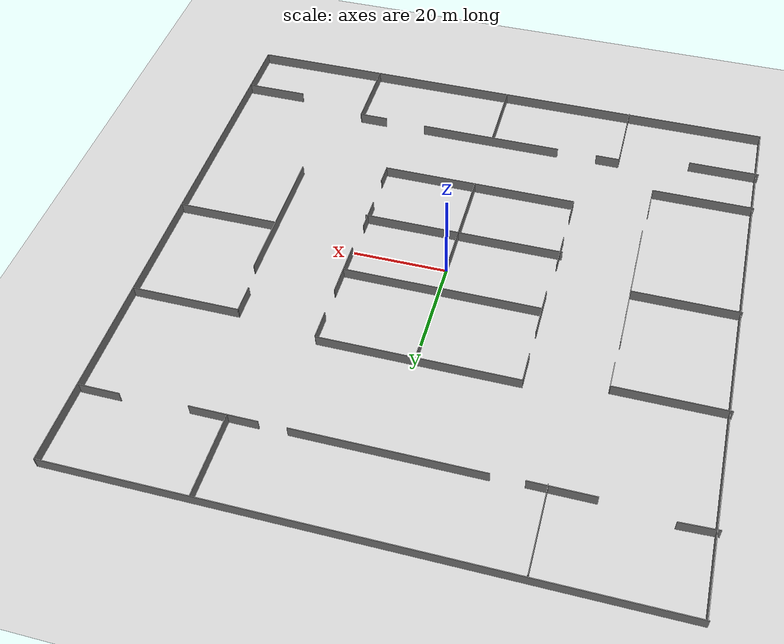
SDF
<sdf version="1.6">
 <world name="default">
  <light name="sun" type="directional">
   <pose>0 0 10 0 -0 0</pose>
   <diffuse>0.8 0.8 0.8 1</diffuse>
   <specular>0.1 0.1 0.1 1</specular>
   <attenuation>
    <range>1000</range>
    <constant>0.9</constant>
    <linear>0.01</linear>
    <quadratic>0.001</quadratic>
   </attenuation>
   <direction>-0.5 0.5 -1</direction>
  </light>
  <model name="ground_plane">
   <static>1</static>
   <link name="link">
    <collision name="collision">
     <geometry><plane><normal>0 0 1</normal><size>100 100</size></plane></geometry>
     <surface><friction><ode><mu>100</mu><mu2>50</mu2></ode></friction></surface>
    </collision>
    <visual name="visual">
     <cast_shadows>0</cast_shadows>
     <geometry><plane><normal>0 0 1</normal><size>100 100</size></plane></geometry>
     <material>
      <script><uri>file://media/materials/scripts/gazebo.material</uri><name>Gazebo/Grey</name></script>
     </material>
    </visual>
   </link>
  </model>
  <gravity>0 0 -9.8</gravity>
  <magnetic_field>6e-06 2.3e-05 -4.2e-05</magnetic_field>
  <atmosphere type="adiabatic"/>
  <physics name="default_physics" default="0" type="ode">
   <max_step_size>0.001</max_step_size>
   <real_time_factor>1</real_time_factor>
   <real_time_update_rate>1000</real_time_update_rate>
  </physics>
  <scene><ambient>0.4 0.4 0.4 1</ambient><background>0.7 0.7 0.7 1</background><shadows>1</shadows></scene>
  <spherical_coordinates>
   <surface_model>EARTH_WGS84</surface_model>
   <latitude_deg>0</latitude_deg>
   <longitude_deg>0</longitude_deg>
   <elevation>0</elevation>
   <heading_deg>0</heading_deg>
  </spherical_coordinates>
  <model name="model">
   <pose>-0.404084 3.90839 0 0 -0 0</pose>
   <link name="Wall_0">
    <collision name="Wall_0_Collision">
     <geometry><box><size>119.25 0.15 2.5</size></box></geometry>
     <pose>0 0 1.25 0 -0 0</pose>
    </collision>
    <visual name="Wall_0_Visual">
     <pose>0 0 1.25 0 -0 0</pose>
     <geometry><box><size>119.25 0.15 2.5</size></box></geometry>
     <material>
      <script><uri>file://media/materials/scripts/gazebo.material</uri><name>Gazebo/Grey</name></script>
      <ambient>1 1 1 1</ambient>
     </material>
    </visual>
    <pose>-59.3614 0.107463 0 0 0 -1.5708</pose>
   </link>
   <link name="Wall_1">
    <collision name="Wall_1_Collision">
     <geometry><box><size>119.5 0.15 2.5</size></box></geometry>
     <pose>0 0 1.25 0 -0 0</pose>
    </collision>
    <visual name="Wall_1_Visual">
     <pose>0 0 1.25 0 -0 0</pose>
     <geometry><box><size>119.5 0.15 2.5</size></box></geometry>
     <material>
      <script><uri>file://media/materials/scripts/gazebo.material</uri><name>Gazebo/Grey</name></script>
      <ambient>1 1 1 1</ambient>
     </material>
    </visual>
    <pose>0.313632 -59.4425 0 0 -0 0</pose>
   </link>
   <link name="Wall_10">
    <collision name="Wall_10_Collision">
     <geometry><box><size>4.25 0.15 2.5</size></box></geometry>
     <pose>0 0 1.25 0 -0 0</pose>
    </collision>
    <visual name="Wall_10_Visual">
     <pose>0 0 1.25 0 -0 0</pose>
     <geometry><box><size>4.25 0.15 2.5</size></box></geometry>
     <material>
      <script><uri>file://media/materials/scripts/gazebo.material</uri><name>Gazebo/Grey</name></script>
      <ambient>1 1 1 1</ambient>
     </material>
    </visual>
    <pose>20.3445 -26.0989 0 0 -0 1.5708</pose>
   </link>
   <link name="Wall_12">
    <collision name="Wall_12_Collision">
     <geometry><box><size>42.762 0.15 2.5</size></box></geometry>
     <pose>0 0 1.25 0 -0 0</pose>
    </collision>
    <visual name="Wall_12_Visual">
     <pose>0 0 1.25 0 -0 0</pose>
     <geometry><box><size>42.762 0.15 2.5</size></box></geometry>
     <material>
      <script><uri>file://media/materials/scripts/gazebo.material</uri><name>Gazebo/Grey</name></script>
      <ambient>1 1 1 1</ambient>
     </material>
    </visual>
    <pose>-0.756543 -13.0266 0 0 -0 0</pose>
   </link>
   <link name="Wall_14">
    <collision name="Wall_14_Collision">
     <geometry><box><size>7.75 0.15 2.5</size></box></geometry>
     <pose>0 0 1.25 0 -0 0</pose>
    </collision>
    <visual name="Wall_14_Visual">
     <pose>0 0 1.25 0 -0 0</pose>
     <geometry><box><size>7.75 0.15 2.5</size></box></geometry>
     <material>
      <script><uri>file://media/materials/scripts/gazebo.material</uri><name>Gazebo/Grey</name></script>
      <ambient>1 1 1 1</ambient>
     </material>
    </visual>
    <pose>-21.6217 -13.4008 0 0 0 -1.5708</pose>
   </link>
   <link name="Wall_16">
    <collision name="Wall_16_Collision">
     <geometry><box><size>7.25 0.15 2.5</size></box></geometry>
     <pose>0 0 1.25 0 -0 0</pose>
    </collision>
    <visual name="Wall_16_Visual">
     <pose>0 0 1.25 0 -0 0</pose>
     <geometry><box><size>7.25 0.15 2.5</size></box></geometry>
     <material>
      <script><uri>file://media/materials/scripts/gazebo.material</uri><name>Gazebo/Grey</name></script>
      <ambient>1 1 1 1</ambient>
     </material>
    </visual>
    <pose>20.1003 -13.5026 0 0 0 -1.5708</pose>
   </link>
   <link name="Wall_19">
    <collision name="Wall_19_Collision">
     <geometry><box><size>41.432 0.15 2.5</size></box></geometry>
     <pose>0 0 1.25 0 -0 0</pose>
    </collision>
    <visual name="Wall_19_Visual">
     <pose>0 0 1.25 0 -0 0</pose>
     <geometry><box><size>41.432 0.15 2.5</size></box></geometry>
     <material>
      <script><uri>file://media/materials/scripts/gazebo.material</uri><name>Gazebo/Grey</name></script>
      <ambient>1 1 1 1</ambient>
     </material>
    </visual>
    <pose>-0.235543 2.8384 0 0 -0 3.14159</pose>
   </link>
   <link name="Wall_2">
    <collision name="Wall_2_Collision">
     <geometry><box><size>119.25 0.15 2.5</size></box></geometry>
     <pose>0 0 1.25 0 -0 0</pose>
    </collision>
    <visual name="Wall_2_Visual">
     <pose>0 0 1.25 0 -0 0</pose>
     <geometry><box><size>119.25 0.15 2.5</size></box></geometry>
     <material>
      <script><uri>file://media/materials/scripts/gazebo.material</uri><name>Gazebo/Grey</name></script>
      <ambient>1 1 1 1</ambient>
     </material>
    </visual>
    <pose>59.9886 0.107463 0 0 -0 1.5708</pose>
   </link>
   <link name="Wall_21">
    <collision name="Wall_21_Collision">
     <geometry><box><size>10.5 0.15 2.5</size></box></geometry>
     <pose>0 0 1.25 0 -0 0</pose>
    </collision>
    <visual name="Wall_21_Visual">
     <pose>0 0 1.25 0 -0 0</pose>
     <geometry><box><size>10.5 0.15 2.5</size></box></geometry>
     <material>
      <script><uri>file://media/materials/scripts/gazebo.material</uri><name>Gazebo/Grey</name></script>
      <ambient>1 1 1 1</ambient>
     </material>
    </visual>
    <pose>-20.9646 3.43311 0 0 0 -1.5708</pose>
   </link>
   <link name="Wall_23">
    <collision name="Wall_23_Collision">
     <geometry><box><size>12 0.15 2.5</size></box></geometry>
     <pose>0 0 1.25 0 -0 0</pose>
    </collision>
    <visual name="Wall_23_Visual">
     <pose>0 0 1.25 0 -0 0</pose>
     <geometry><box><size>12 0.15 2.5</size></box></geometry>
     <material>
      <script><uri>file://media/materials/scripts/gazebo.material</uri><name>Gazebo/Grey</name></script>
      <ambient>1 1 1 1</ambient>
     </material>
    </visual>
    <pose>20.4759 2.68311 0 0 0 -1.5708</pose>
   </link>
   <link name="Wall_25">
    <collision name="Wall_25_Collision">
     <geometry><box><size>41.268 0.15 2.5</size></box></geometry>
     <pose>0 0 1.25 0 -0 0</pose>
    </collision>
    <visual name="Wall_25_Visual">
     <pose>0 0 1.25 0 -0 0</pose>
     <geometry><box><size>41.268 0.15 2.5</size></box></geometry>
     <material>
      <script><uri>file://media/materials/scripts/gazebo.material</uri><name>Gazebo/Grey</name></script>
      <ambient>1 1 1 1</ambient>
     </material>
    </visual>
    <pose>-0.262543 20.9014 0 0 -0 0</pose>
   </link>
   <link name="Wall_27">
    <collision name="Wall_27_Collision">
     <geometry><box><size>6 0.15 2.5</size></box></geometry>
     <pose>0 0 1.25 0 -0 0</pose>
    </collision>
    <visual name="Wall_27_Visual">
     <pose>0 0 1.25 0 -0 0</pose>
     <geometry><box><size>6 0.15 2.5</size></box></geometry>
     <material>
      <script><uri>file://media/materials/scripts/gazebo.material</uri><name>Gazebo/Grey</name></script>
      <ambient>1 1 1 1</ambient>
     </material>
    </visual>
    <pose>20.4784 17.6949 0 0 0 -1.5708</pose>
   </link>
   <link name="Wall_3">
    <collision name="Wall_3_Collision">
     <geometry><box><size>119.75 0.15 2.5</size></box></geometry>
     <pose>0 0 1.25 0 -0 0</pose>
    </collision>
    <visual name="Wall_3_Visual">
     <pose>0 0 1.25 0 -0 0</pose>
     <geometry><box><size>119.75 0.15 2.5</size></box></geometry>
     <material>
      <script><uri>file://media/materials/scripts/gazebo.material</uri><name>Gazebo/Grey</name></script>
      <ambient>1 1 1 1</ambient>
     </material>
    </visual>
    <pose>0.188632 59.6575 0 0 -0 3.14159</pose>
   </link>
   <link name="Wall_30">
    <collision name="Wall_30_Collision">
     <geometry><box><size>6.5 0.15 2.5</size></box></geometry>
     <pose>0 0 1.25 0 -0 0</pose>
    </collision>
    <visual name="Wall_30_Visual">
     <pose>0 0 1.25 0 -0 0</pose>
     <geometry><box><size>6.5 0.15 2.5</size></box></geometry>
     <material>
      <script><uri>file://media/materials/scripts/gazebo.material</uri><name>Gazebo/Grey</name></script>
      <ambient>1 1 1 1</ambient>
     </material>
    </visual>
    <pose>-20.8215 17.7264 0 0 0 -1.5708</pose>
   </link>
   <link name="Wall_33">
    <collision name="Wall_33_Collision">
     <geometry><box><size>23 0.15 2.5</size></box></geometry>
     <pose>0 0 1.25 0 -0 0</pose>
    </collision>
    <visual name="Wall_33_Visual">
     <pose>0 0 1.25 0 -0 0</pose>
     <geometry><box><size>23 0.15 2.5</size></box></geometry>
     <material>
      <script><uri>file://media/materials/scripts/gazebo.material</uri><name>Gazebo/Grey</name></script>
      <ambient>1 1 1 1</ambient>
     </material>
    </visual>
    <pose>-48.4422 18.0663 0 0 -0 0</pose>
   </link>
   <link name="Wall_34">
    <collision name="Wall_34_Collision">
     <geometry><box><size>5.75 0.15 2.5</size></box></geometry>
     <pose>0 0 1.25 0 -0 0</pose>
    </collision>
    <visual name="Wall_34_Visual">
     <pose>0 0 1.25 0 -0 0</pose>
     <geometry><box><size>5.75 0.15 2.5</size></box></geometry>
     <material>
      <script><uri>file://media/materials/scripts/gazebo.material</uri><name>Gazebo/Grey</name></script>
      <ambient>1 1 1 1</ambient>
     </material>
    </visual>
    <pose>-37.0172 15.2663 0 0 0 -1.5708</pose>
   </link>
   <link name="Wall_36">
    <collision name="Wall_36_Collision">
     <geometry><box><size>22.25 0.15 2.5</size></box></geometry>
     <pose>0 0 1.25 0 -0 0</pose>
    </collision>
    <visual name="Wall_36_Visual">
     <pose>0 0 1.25 0 -0 0</pose>
     <geometry><box><size>22.25 0.15 2.5</size></box></geometry>
     <material>
      <script><uri>file://media/materials/scripts/gazebo.material</uri><name>Gazebo/Grey</name></script>
      <ambient>1 1 1 1</ambient>
     </material>
    </visual>
    <pose>-48.5697 -6.10432 0 0 -0 0</pose>
   </link>
   <link name="Wall_38">
    <collision name="Wall_38_Collision">
     <geometry><box><size>30.5 0.15 2.5</size></box></geometry>
     <pose>0 0 1.25 0 -0 0</pose>
    </collision>
    <visual name="Wall_38_Visual">
     <pose>0 0 1.25 0 -0 0</pose>
     <geometry><box><size>30.5 0.15 2.5</size></box></geometry>
     <material>
      <script><uri>file://media/materials/scripts/gazebo.material</uri><name>Gazebo/Grey</name></script>
      <ambient>1 1 1 1</ambient>
     </material>
    </visual>
    <pose>-37.3691 -8.00989 0 0 0 -1.5708</pose>
   </link>
   <link name="Wall_43">
    <collision name="Wall_43_Collision">
     <geometry><box><size>15.25 0.15 2.5</size></box></geometry>
     <pose>0 0 1.25 0 -0 0</pose>
    </collision>
    <visual name="Wall_43_Visual">
     <pose>0 0 1.25 0 -0 0</pose>
     <geometry><box><size>15.25 0.15 2.5</size></box></geometry>
     <material>
      <script><uri>file://media/materials/scripts/gazebo.material</uri><name>Gazebo/Grey</name></script>
      <ambient>1 1 1 1</ambient>
     </material>
    </visual>
    <pose>-52.3124 -46.7217 0 0 -0 0</pose>
   </link>
   <link name="Wall_46">
    <collision name="Wall_46_Collision">
     <geometry><box><size>21.75 0.15 2.5</size></box></geometry>
     <pose>0 0 1.25 0 -0 0</pose>
    </collision>
    <visual name="Wall_46_Visual">
     <pose>0 0 1.25 0 -0 0</pose>
     <geometry><box><size>21.75 0.15 2.5</size></box></geometry>
     <material>
      <script><uri>file://media/materials/scripts/gazebo.material</uri><name>Gazebo/Grey</name></script>
      <ambient>1 1 1 1</ambient>
     </material>
    </visual>
    <pose>-48.8419 -35.9288 0 0 -0 0</pose>
   </link>
   <link name="Wall_48">
    <collision name="Wall_48_Collision">
     <geometry><box><size>6.5 0.15 2.5</size></box></geometry>
     <pose>0 0 1.25 0 -0 0</pose>
    </collision>
    <visual name="Wall_48_Visual">
     <pose>0 0 1.25 0 -0 0</pose>
     <geometry><box><size>6.5 0.15 2.5</size></box></geometry>
     <material>
      <script><uri>file://media/materials/scripts/gazebo.material</uri><name>Gazebo/Grey</name></script>
      <ambient>1 1 1 1</ambient>
     </material>
    </visual>
    <pose>-37.8768 -32.6309 0 0 0 -1.5708</pose>
   </link>
   <link name="Wall_52">
    <collision name="Wall_52_Collision">
     <geometry><box><size>30.571 0.15 2.5</size></box></geometry>
     <pose>0 0 1.25 0 -0 0</pose>
    </collision>
    <visual name="Wall_52_Visual">
     <pose>0 0 1.25 0 -0 0</pose>
     <geometry><box><size>30.571 0.15 2.5</size></box></geometry>
     <material>
      <script><uri>file://media/materials/scripts/gazebo.material</uri><name>Gazebo/Grey</name></script>
      <ambient>1 1 1 1</ambient>
     </material>
    </visual>
    <pose>38.5075 -8.5461 0 0 0 -1.5708</pose>
   </link>
   <link name="Wall_54">
    <collision name="Wall_54_Collision">
     <geometry><box><size>21.25 0.15 2.5</size></box></geometry>
     <pose>0 0 1.25 0 -0 0</pose>
    </collision>
    <visual name="Wall_54_Visual">
     <pose>0 0 1.25 0 -0 0</pose>
     <geometry><box><size>21.25 0.15 2.5</size></box></geometry>
     <material>
      <script><uri>file://media/materials/scripts/gazebo.material</uri><name>Gazebo/Grey</name></script>
      <ambient>1 1 1 1</ambient>
     </material>
    </visual>
    <pose>49.1909 -6.12624 0 0 -0 0</pose>
   </link>
   <link name="Wall_56">
    <collision name="Wall_56_Collision">
     <geometry><box><size>6 0.15 2.5</size></box></geometry>
     <pose>0 0 1.25 0 -0 0</pose>
    </collision>
    <visual name="Wall_56_Visual">
     <pose>0 0 1.25 0 -0 0</pose>
     <geometry><box><size>6 0.15 2.5</size></box></geometry>
     <material>
      <script><uri>file://media/materials/scripts/gazebo.material</uri><name>Gazebo/Grey</name></script>
      <ambient>1 1 1 1</ambient>
     </material>
    </visual>
    <pose>37.4357 15.3905 0 0 0 -1.5708</pose>
   </link>
   <link name="Wall_58">
    <collision name="Wall_58_Collision">
     <geometry><box><size>22.5 0.15 2.5</size></box></geometry>
     <pose>0 0 1.25 0 -0 0</pose>
    </collision>
    <visual name="Wall_58_Visual">
     <pose>0 0 1.25 0 -0 0</pose>
     <geometry><box><size>22.5 0.15 2.5</size></box></geometry>
     <material>
      <script><uri>file://media/materials/scripts/gazebo.material</uri><name>Gazebo/Grey</name></script>
      <ambient>1 1 1 1</ambient>
     </material>
    </visual>
    <pose>48.6107 18.3155 0 0 -0 0</pose>
   </link>
   <link name="Wall_6">
    <collision name="Wall_6_Collision">
     <geometry><box><size>49.25 0.15 2.5</size></box></geometry>
     <pose>0 0 1.25 0 -0 0</pose>
    </collision>
    <visual name="Wall_6_Visual">
     <pose>0 0 1.25 0 -0 0</pose>
     <geometry><box><size>49.25 0.15 2.5</size></box></geometry>
     <material>
      <script><uri>file://media/materials/scripts/gazebo.material</uri><name>Gazebo/Grey</name></script>
      <ambient>1 1 1 1</ambient>
     </material>
    </visual>
    <pose>0.184231 -3.39039 0 0 0 -1.5708</pose>
   </link>
   <link name="Wall_61">
    <collision name="Wall_61_Collision">
     <geometry><box><size>38 0.15 2.5</size></box></geometry>
     <pose>0 0 1.25 0 -0 0</pose>
    </collision>
    <visual name="Wall_61_Visual">
     <pose>0 0 1.25 0 -0 0</pose>
     <geometry><box><size>38 0.15 2.5</size></box></geometry>
     <material>
      <script><uri>file://media/materials/scripts/gazebo.material</uri><name>Gazebo/Grey</name></script>
      <ambient>1 1 1 1</ambient>
     </material>
    </visual>
    <pose>-0.414369 42.1378 0 0 -0 0</pose>
   </link>
   <link name="Wall_63">
    <collision name="Wall_63_Collision">
     <geometry><box><size>17.7128 0.15 2.5</size></box></geometry>
     <pose>0 0 1.25 0 -0 0</pose>
    </collision>
    <visual name="Wall_63_Visual">
     <pose>0 0 1.25 0 -0 0</pose>
     <geometry><box><size>17.7128 0.15 2.5</size></box></geometry>
     <material>
      <script><uri>file://media/materials/scripts/gazebo.material</uri><name>Gazebo/Grey</name></script>
      <ambient>1 1 1 1</ambient>
     </material>
    </visual>
    <pose>-29.7705 50.4622 0 0 0 -1.5708</pose>
   </link>
   <link name="Wall_67">
    <collision name="Wall_67_Collision">
     <geometry><box><size>13 0.15 2.5</size></box></geometry>
     <pose>0 0 1.25 0 -0 0</pose>
    </collision>
    <visual name="Wall_67_Visual">
     <pose>0 0 1.25 0 -0 0</pose>
     <geometry><box><size>13 0.15 2.5</size></box></geometry>
     <material>
      <script><uri>file://media/materials/scripts/gazebo.material</uri><name>Gazebo/Grey</name></script>
      <ambient>1 1 1 1</ambient>
     </material>
    </visual>
    <pose>-32.2918 41.9224 0 0 -0 0</pose>
   </link>
   <link name="Wall_73">
    <collision name="Wall_73_Collision">
     <geometry><box><size>7.5977 0.15 2.5</size></box></geometry>
     <pose>0 0 1.25 0 -0 0</pose>
    </collision>
    <visual name="Wall_73_Visual">
     <pose>0 0 1.25 0 -0 0</pose>
     <geometry><box><size>7.5977 0.15 2.5</size></box></geometry>
     <material>
      <script><uri>file://media/materials/scripts/gazebo.material</uri><name>Gazebo/Grey</name></script>
      <ambient>1 1 1 1</ambient>
     </material>
    </visual>
    <pose>-56.2646 43.1601 0 0 -0 0.037278</pose>
   </link>
   <link name="Wall_75">
    <collision name="Wall_75_Collision">
     <geometry><box><size>8.25 0.15 2.5</size></box></geometry>
     <pose>0 0 1.25 0 -0 0</pose>
    </collision>
    <visual name="Wall_75_Visual">
     <pose>0 0 1.25 0 -0 0</pose>
     <geometry><box><size>8.25 0.15 2.5</size></box></geometry>
     <material>
      <script><uri>file://media/materials/scripts/gazebo.material</uri><name>Gazebo/Grey</name></script>
      <ambient>1 1 1 1</ambient>
     </material>
    </visual>
    <pose>55.5542 42.8554 0 0 -0 0</pose>
   </link>
   <link name="Wall_77">
    <collision name="Wall_77_Collision">
     <geometry><box><size>17.5 0.15 2.5</size></box></geometry>
     <pose>0 0 1.25 0 -0 0</pose>
    </collision>
    <visual name="Wall_77_Visual">
     <pose>0 0 1.25 0 -0 0</pose>
     <geometry><box><size>17.5 0.15 2.5</size></box></geometry>
     <material>
      <script><uri>file://media/materials/scripts/gazebo.material</uri><name>Gazebo/Grey</name></script>
      <ambient>1 1 1 1</ambient>
     </material>
    </visual>
    <pose>30.2059 50.855 0 0 0 -1.5708</pose>
   </link>
   <link name="Wall_78">
    <collision name="Wall_78_Collision">
     <geometry><box><size>7.75 0.15 2.5</size></box></geometry>
     <pose>0 0 1.25 0 -0 0</pose>
    </collision>
    <visual name="Wall_78_Visual">
     <pose>0 0 1.25 0 -0 0</pose>
     <geometry><box><size>7.75 0.15 2.5</size></box></geometry>
     <material>
      <script><uri>file://media/materials/scripts/gazebo.material</uri><name>Gazebo/Grey</name></script>
      <ambient>1 1 1 1</ambient>
     </material>
    </visual>
    <pose>34.0059 42.18 0 0 -0 0</pose>
   </link>
   <link name="Wall_79">
    <collision name="Wall_79_Collision">
     <geometry><box><size>13.75 0.15 2.5</size></box></geometry>
     <pose>0 0 1.25 0 -0 0</pose>
    </collision>
    <visual name="Wall_79_Visual">
     <pose>0 0 1.25 0 -0 0</pose>
     <geometry><box><size>13.75 0.15 2.5</size></box></geometry>
     <material>
      <script><uri>file://media/materials/scripts/gazebo.material</uri><name>Gazebo/Grey</name></script>
      <ambient>1 1 1 1</ambient>
     </material>
    </visual>
    <pose>31.0059 42.18 0 0 -0 3.14159</pose>
   </link>
   <link name="Wall_8">
    <collision name="Wall_8_Collision">
     <geometry><box><size>4.75 0.15 2.5</size></box></geometry>
     <pose>0 0 1.25 0 -0 0</pose>
    </collision>
    <visual name="Wall_8_Visual">
     <pose>0 0 1.25 0 -0 0</pose>
     <geometry><box><size>4.75 0.15 2.5</size></box></geometry>
     <material>
      <script><uri>file://media/materials/scripts/gazebo.material</uri><name>Gazebo/Grey</name></script>
      <ambient>1 1 1 1</ambient>
     </material>
    </visual>
    <pose>-21.7555 -25.8489 0 0 0 -1.5708</pose>
   </link>
   <link name="Wall_81">
    <collision name="Wall_81_Collision">
     <geometry><box><size>31.25 0.15 2.5</size></box></geometry>
     <pose>0 0 1.25 0 -0 0</pose>
    </collision>
    <visual name="Wall_81_Visual">
     <pose>0 0 1.25 0 -0 0</pose>
     <geometry><box><size>31.25 0.15 2.5</size></box></geometry>
     <material>
      <script><uri>file://media/materials/scripts/gazebo.material</uri><name>Gazebo/Grey</name></script>
      <ambient>1 1 1 1</ambient>
     </material>
    </visual>
    <pose>0.263454 -43.7009 0 0 -0 0</pose>
   </link>
   <link name="Wall_83">
    <collision name="Wall_83_Collision">
     <geometry><box><size>15.5 0.15 2.5</size></box></geometry>
     <pose>0 0 1.25 0 -0 0</pose>
    </collision>
    <visual name="Wall_83_Visual">
     <pose>0 0 1.25 0 -0 0</pose>
     <geometry><box><size>15.5 0.15 2.5</size></box></geometry>
     <material>
      <script><uri>file://media/materials/scripts/gazebo.material</uri><name>Gazebo/Grey</name></script>
      <ambient>1 1 1 1</ambient>
     </material>
    </visual>
    <pose>-0.162339 -51.6703 0 0 0 -1.5708</pose>
   </link>
   <link name="Wall_85">
    <collision name="Wall_85_Collision">
     <geometry><box><size>6.25 0.15 2.5</size></box></geometry>
     <pose>0 0 1.25 0 -0 0</pose>
    </collision>
    <visual name="Wall_85_Visual">
     <pose>0 0 1.25 0 -0 0</pose>
     <geometry><box><size>6.25 0.15 2.5</size></box></geometry>
     <material>
      <script><uri>file://media/materials/scripts/gazebo.material</uri><name>Gazebo/Grey</name></script>
      <ambient>1 1 1 1</ambient>
     </material>
    </visual>
    <pose>28.2049 -44.0008 0 0 -0 0</pose>
   </link>
   <link name="Wall_86">
    <collision name="Wall_86_Collision">
     <geometry><box><size>15.5 0.15 2.5</size></box></geometry>
     <pose>0 0 1.25 0 -0 0</pose>
    </collision>
    <visual name="Wall_86_Visual">
     <pose>0 0 1.25 0 -0 0</pose>
     <geometry><box><size>15.5 0.15 2.5</size></box></geometry>
     <material>
      <script><uri>file://media/materials/scripts/gazebo.material</uri><name>Gazebo/Grey</name></script>
      <ambient>1 1 1 1</ambient>
     </material>
    </visual>
    <pose>31.2549 -51.6758 0 0 0 -1.5708</pose>
   </link>
   <link name="Wall_88">
    <collision name="Wall_88_Collision">
     <geometry><box><size>5.25 0.15 2.5</size></box></geometry>
     <pose>0 0 1.25 0 -0 0</pose>
    </collision>
    <visual name="Wall_88_Visual">
     <pose>0 0 1.25 0 -0 0</pose>
     <geometry><box><size>5.25 0.15 2.5</size></box></geometry>
     <material>
      <script><uri>file://media/materials/scripts/gazebo.material</uri><name>Gazebo/Grey</name></script>
      <ambient>1 1 1 1</ambient>
     </material>
    </visual>
    <pose>-26.7287 -43.8075 0 0 -0 3.14159</pose>
   </link>
   <link name="Wall_89">
    <collision name="Wall_89_Collision">
     <geometry><box><size>16 0.15 2.5</size></box></geometry>
     <pose>0 0 1.25 0 -0 0</pose>
    </collision>
    <visual name="Wall_89_Visual">
     <pose>0 0 1.25 0 -0 0</pose>
     <geometry><box><size>16 0.15 2.5</size></box></geometry>
     <material>
      <script><uri>file://media/materials/scripts/gazebo.material</uri><name>Gazebo/Grey</name></script>
      <ambient>1 1 1 1</ambient>
     </material>
    </visual>
    <pose>-29.2787 -51.7325 0 0 0 -1.5708</pose>
   </link>
   <link name="Wall_9">
    <collision name="Wall_9_Collision">
     <geometry><box><size>42.25 0.15 2.5</size></box></geometry>
     <pose>0 0 1.25 0 -0 0</pose>
    </collision>
    <visual name="Wall_9_Visual">
     <pose>0 0 1.25 0 -0 0</pose>
     <geometry><box><size>42.25 0.15 2.5</size></box></geometry>
     <material>
      <script><uri>file://media/materials/scripts/gazebo.material</uri><name>Gazebo/Grey</name></script>
      <ambient>1 1 1 1</ambient>
     </material>
    </visual>
    <pose>-0.705462 -28.1489 0 0 -0 0</pose>
   </link>
   <link name="Wall_91">
    <collision name="Wall_91_Collision">
     <geometry><box><size>13 0.15 2.5</size></box></geometry>
     <pose>0 0 1.25 0 -0 0</pose>
    </collision>
    <visual name="Wall_91_Visual">
     <pose>0 0 1.25 0 -0 0</pose>
     <geometry><box><size>13 0.15 2.5</size></box></geometry>
     <material>
      <script><uri>file://media/materials/scripts/gazebo.material</uri><name>Gazebo/Grey</name></script>
      <ambient>1 1 1 1</ambient>
     </material>
    </visual>
    <pose>53.3141 -47.4948 0 0 -0 0</pose>
   </link>
   <static>1</static>
  </model>
 </world>
</sdf>
